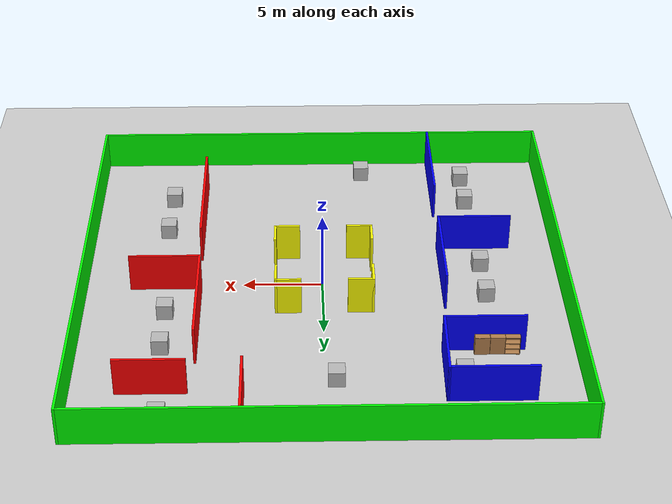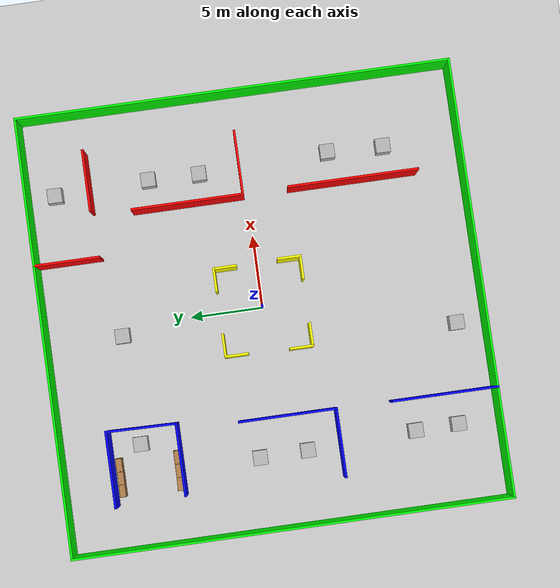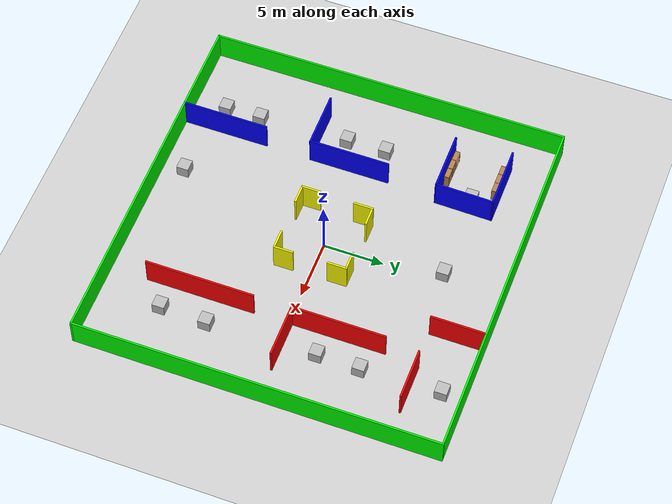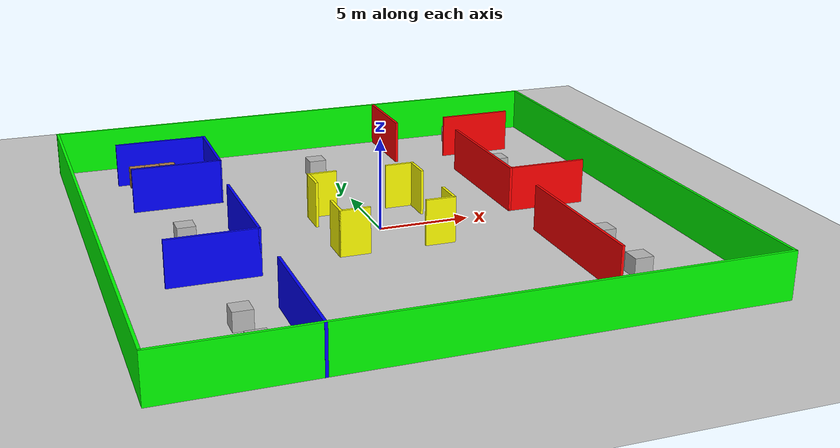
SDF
<sdf version="1.6">
 <world name="default">
  <light name="sun" type="directional">
   <pose>0 0 10 0 -0 0</pose>
   <diffuse>0.8 0.8 0.8 1</diffuse>
   <specular>0.1 0.1 0.1 1</specular>
   <attenuation>
    <range>1000</range>
    <constant>0.9</constant>
    <linear>0.01</linear>
    <quadratic>0.001</quadratic>
   </attenuation>
   <direction>-0.5 0.5 -1</direction>
  </light>
  <model name="ground_plane">
   <static>1</static>
   <link name="link">
    <collision name="collision">
     <geometry><plane><normal>0 0 1</normal><size>100 100</size></plane></geometry>
     <surface><friction><ode><mu>100</mu><mu2>50</mu2></ode></friction></surface>
    </collision>
    <visual name="visual">
     <cast_shadows>0</cast_shadows>
     <geometry><plane><normal>0 0 1</normal><size>100 100</size></plane></geometry>
     <material>
      <script><uri>file://media/materials/scripts/gazebo.material</uri><name>Gazebo/Grey</name></script>
     </material>
    </visual>
   </link>
  </model>
  <gravity>0 0 -9.8</gravity>
  <magnetic_field>6e-06 2.3e-05 -4.2e-05</magnetic_field>
  <atmosphere type="adiabatic"/>
  <physics name="default_physics" default="0" type="ode">
   <max_step_size>0.001</max_step_size>
   <real_time_factor>1</real_time_factor>
   <real_time_update_rate>1000</real_time_update_rate>
  </physics>
  <scene><ambient>0.4 0.4 0.4 1</ambient><background>0.7 0.7 0.7 1</background><shadows>1</shadows></scene>
  <spherical_coordinates>
   <surface_model>EARTH_WGS84</surface_model>
   <latitude_deg>0</latitude_deg>
   <longitude_deg>0</longitude_deg>
   <elevation>0</elevation>
   <heading_deg>0</heading_deg>
  </spherical_coordinates>
  <model name="open_classroom.world">
   <pose>-0.0798 0.017554 0 0 -0 0</pose>
   <link name="Wall_10">
    <collision name="Wall_10_Collision">
     <geometry><box><size>29.999 0.15 2.5</size></box></geometry>
     <pose>0 0 1.25 0 -0 0</pose>
    </collision>
    <visual name="Wall_10_Visual">
     <pose>0 0 1.25 0 -0 0</pose>
     <geometry><box><size>29.999 0.15 2.5</size></box></geometry>
     <material>
      <script><uri>file://media/materials/scripts/gazebo.material</uri><name>Gazebo/Grey</name></script>
      <ambient>0 1 0 1</ambient>
     </material>
    </visual>
    <pose>-15 0.00164 0 0 0 -1.5708</pose>
   </link>
   <link name="Wall_12">
    <collision name="Wall_12_Collision">
     <geometry><box><size>30 0.15 2.5</size></box></geometry>
     <pose>0 0 1.25 0 -0 0</pose>
    </collision>
    <visual name="Wall_12_Visual">
     <pose>0 0 1.25 0 -0 0</pose>
     <geometry><box><size>30 0.15 2.5</size></box></geometry>
     <material>
      <script><uri>file://media/materials/scripts/gazebo.material</uri><name>Gazebo/Grey</name></script>
      <ambient>0 1 0 1</ambient>
     </material>
    </visual>
    <pose>15 0.00114 0 0 0 -1.5708</pose>
   </link>
   <link name="Wall_14">
    <collision name="Wall_14_Collision">
     <geometry><box><size>30.15 0.15 2.5</size></box></geometry>
     <pose>0 0 1.25 0 -0 0</pose>
    </collision>
    <visual name="Wall_14_Visual">
     <pose>0 0 1.25 0 -0 0</pose>
     <geometry><box><size>30.15 0.15 2.5</size></box></geometry>
     <material>
      <script><uri>file://media/materials/scripts/gazebo.material</uri><name>Gazebo/Grey</name></script>
      <ambient>0 1 0 1</ambient>
     </material>
    </visual>
    <pose>0 -14.9234 0 0 0 -3.3e-05</pose>
   </link>
   <link name="Wall_16">
    <collision name="Wall_16_Collision">
     <geometry><box><size>30 0.15 2.5</size></box></geometry>
     <pose>0 0 1.25 0 -0 0</pose>
    </collision>
    <visual name="Wall_16_Visual">
     <pose>0 0 1.25 0 -0 0</pose>
     <geometry><box><size>30 0.15 2.5</size></box></geometry>
     <material>
      <script><uri>file://media/materials/scripts/gazebo.material</uri><name>Gazebo/Grey</name></script>
      <ambient>0 1 0 1</ambient>
     </material>
    </visual>
    <pose>-0.075 14.9261 0 0 -0 0</pose>
   </link>
   <link name="Wall_20">
    <collision name="Wall_20_Collision">
     <geometry><box><size>4.5 0.15 2.5</size></box></geometry>
     <pose>0 0 1.25 0 -0 0</pose>
    </collision>
    <visual name="Wall_20_Visual">
     <pose>0 0 1.25 0 -0 0</pose>
     <geometry><box><size>4.5 0.15 2.5</size></box></geometry>
     <material>
      <script><uri>file://media/materials/scripts/gazebo.material</uri><name>Gazebo/Grey</name></script>
      <ambient>1 0 0 1</ambient>
     </material>
    </visual>
    <pose>4.86357 12.6872 0 0 0 -1.5708</pose>
   </link>
   <link name="Wall_22">
    <collision name="Wall_22_Collision">
     <geometry><box><size>4.25 0.15 2.5</size></box></geometry>
     <pose>0 0 1.25 0 -0 0</pose>
    </collision>
    <visual name="Wall_22_Visual">
     <pose>0 0 1.25 0 -0 0</pose>
     <geometry><box><size>4.25 0.15 2.5</size></box></geometry>
     <material>
      <script><uri>file://media/materials/scripts/gazebo.material</uri><name>Gazebo/Grey</name></script>
      <ambient>1 0 0 1</ambient>
     </material>
    </visual>
    <pose>10.1684 10.6629 0 0 -0 0</pose>
   </link>
   <link name="Wall_25">
    <collision name="Wall_25_Collision">
     <geometry><box><size>7.75 0.15 2.5</size></box></geometry>
     <pose>0 0 1.25 0 -0 0</pose>
    </collision>
    <visual name="Wall_25_Visual">
     <pose>0 0 1.25 0 -0 0</pose>
     <geometry><box><size>7.75 0.15 2.5</size></box></geometry>
     <material>
      <script><uri>file://media/materials/scripts/gazebo.material</uri><name>Gazebo/Grey</name></script>
      <ambient>1 0 0 1</ambient>
     </material>
    </visual>
    <pose>7.76461 4.0572 0 0 0 -1.5708</pose>
   </link>
   <link name="Wall_26">
    <collision name="Wall_26_Collision">
     <geometry><box><size>4.5 0.15 2.5</size></box></geometry>
     <pose>0 0 1.25 0 -0 0</pose>
    </collision>
    <visual name="Wall_26_Visual">
     <pose>0 0 1.25 0 -0 0</pose>
     <geometry><box><size>4.5 0.15 2.5</size></box></geometry>
     <material>
      <script><uri>file://media/materials/scripts/gazebo.material</uri><name>Gazebo/Grey</name></script>
      <ambient>1 0 0 1</ambient>
     </material>
    </visual>
    <pose>9.93961 0.257202 0 0 -0 0</pose>
   </link>
   <link name="Wall_28">
    <collision name="Wall_28_Collision">
     <geometry><box><size>9 0.15 2.5</size></box></geometry>
     <pose>0 0 1.25 0 -0 0</pose>
    </collision>
    <visual name="Wall_28_Visual">
     <pose>0 0 1.25 0 -0 0</pose>
     <geometry><box><size>9 0.15 2.5</size></box></geometry>
     <material>
      <script><uri>file://media/materials/scripts/gazebo.material</uri><name>Gazebo/Grey</name></script>
      <ambient>1 0 0 1</ambient>
     </material>
    </visual>
    <pose>7.83537 -7.32287 0 0 0 -1.5708</pose>
   </link>
   <link name="Wall_30">
    <collision name="Wall_30_Collision">
     <geometry><box><size>5.25 0.15 2.5</size></box></geometry>
     <pose>0 0 1.25 0 -0 0</pose>
    </collision>
    <visual name="Wall_30_Visual">
     <pose>0 0 1.25 0 -0 0</pose>
     <geometry><box><size>5.25 0.15 2.5</size></box></geometry>
     <material>
      <script><uri>file://media/materials/scripts/gazebo.material</uri><name>Gazebo/Grey</name></script>
      <ambient>0 0 1 1</ambient>
     </material>
    </visual>
    <pose>-9.45 11.5921 0 0 -0 0</pose>
   </link>
   <link name="Wall_32">
    <collision name="Wall_32_Collision">
     <geometry><box><size>7.25 0.15 2.5</size></box></geometry>
     <pose>0 0 1.25 0 -0 0</pose>
    </collision>
    <visual name="Wall_32_Visual">
     <pose>0 0 1.25 0 -0 0</pose>
     <geometry><box><size>7.25 0.15 2.5</size></box></geometry>
     <material>
      <script><uri>file://media/materials/scripts/gazebo.material</uri><name>Gazebo/Grey</name></script>
      <ambient>0 0 1 1</ambient>
     </material>
    </visual>
    <pose>-7.53303 -11.3761 0 0 -0 1.5708</pose>
   </link>
   <link name="Wall_34">
    <collision name="Wall_34_Collision">
     <geometry><box><size>4.75 0.15 2.5</size></box></geometry>
     <pose>0 0 1.25 0 -0 0</pose>
    </collision>
    <visual name="Wall_34_Visual">
     <pose>0 0 1.25 0 -0 0</pose>
     <geometry><box><size>4.75 0.15 2.5</size></box></geometry>
     <material>
      <script><uri>file://media/materials/scripts/gazebo.material</uri><name>Gazebo/Grey</name></script>
      <ambient>0 0 1 1</ambient>
     </material>
    </visual>
    <pose>-9.78609 -3.97418 0 0 -0 0</pose>
   </link>
   <link name="Wall_36">
    <collision name="Wall_36_Collision">
     <geometry><box><size>6.75 0.15 2.5</size></box></geometry>
     <pose>0 0 1.25 0 -0 0</pose>
    </collision>
    <visual name="Wall_36_Visual">
     <pose>0 0 1.25 0 -0 0</pose>
     <geometry><box><size>6.75 0.15 2.5</size></box></geometry>
     <material>
      <script><uri>file://media/materials/scripts/gazebo.material</uri><name>Gazebo/Grey</name></script>
      <ambient>0 0 1 1</ambient>
     </material>
    </visual>
    <pose>-7.48609 -0.67418 0 0 -0 1.5708</pose>
   </link>
   <link name="Wall_38">
    <collision name="Wall_38_Collision">
     <geometry><box><size>5 0.15 2.5</size></box></geometry>
     <pose>0 0 1.25 0 -0 0</pose>
    </collision>
    <visual name="Wall_38_Visual">
     <pose>0 0 1.25 0 -0 0</pose>
     <geometry><box><size>5 0.15 2.5</size></box></geometry>
     <material>
      <script><uri>file://media/materials/scripts/gazebo.material</uri><name>Gazebo/Grey</name></script>
      <ambient>0 0 1 1</ambient>
     </material>
    </visual>
    <pose>-9.41498 6.85473 0 0 -0 0</pose>
   </link>
   <link name="Wall_52">
    <collision name="Wall_52_Collision">
     <geometry><box><size>1.65 0.15 2.5</size></box></geometry>
     <pose>0 0 1.25 0 -0 0</pose>
    </collision>
    <visual name="Wall_52_Visual">
     <pose>0 0 1.25 0 -0 0</pose>
     <geometry><box><size>1.65 0.15 2.5</size></box></geometry>
     <material>
      <script><uri>file://media/materials/scripts/gazebo.material</uri><name>Gazebo/Grey</name></script>
      <ambient>1 1 0 1</ambient>
     </material>
    </visual>
    <pose>-3 2.17614 0 0 0 -1.5708</pose>
   </link>
   <link name="Wall_56">
    <collision name="Wall_56_Collision">
     <geometry><box><size>1.65 0.15 2.5</size></box></geometry>
     <pose>0 0 1.25 0 -0 0</pose>
    </collision>
    <visual name="Wall_56_Visual">
     <pose>0 0 1.25 0 -0 0</pose>
     <geometry><box><size>1.65 0.15 2.5</size></box></geometry>
     <material>
      <script><uri>file://media/materials/scripts/gazebo.material</uri><name>Gazebo/Grey</name></script>
      <ambient>1 1 0 1</ambient>
     </material>
    </visual>
    <pose>-3.07339 -2.25176 0 0 -0 1.5708</pose>
   </link>
   <link name="Wall_58">
    <collision name="Wall_58_Collision">
     <geometry><box><size>1.65 0.15 2.5</size></box></geometry>
     <pose>0 0 1.25 0 -0 0</pose>
    </collision>
    <visual name="Wall_58_Visual">
     <pose>0 0 1.25 0 -0 0</pose>
     <geometry><box><size>1.65 0.15 2.5</size></box></geometry>
     <material>
      <script><uri>file://media/materials/scripts/gazebo.material</uri><name>Gazebo/Grey</name></script>
      <ambient>1 1 0 1</ambient>
     </material>
    </visual>
    <pose>-2.25 2.92614 0 0 -0 0</pose>
   </link>
   <link name="Wall_60">
    <collision name="Wall_60_Collision">
     <geometry><box><size>1.65 0.15 2.5</size></box></geometry>
     <pose>0 0 1.25 0 -0 0</pose>
    </collision>
    <visual name="Wall_60_Visual">
     <pose>0 0 1.25 0 -0 0</pose>
     <geometry><box><size>1.65 0.15 2.5</size></box></geometry>
     <material>
      <script><uri>file://media/materials/scripts/gazebo.material</uri><name>Gazebo/Grey</name></script>
      <ambient>1 1 0 1</ambient>
     </material>
    </visual>
    <pose>-2.32339 -3.00176 0 0 -0 0</pose>
   </link>
   <link name="Wall_64">
    <collision name="Wall_64_Collision">
     <geometry><box><size>1.65 0.15 2.5</size></box></geometry>
     <pose>0 0 1.25 0 -0 0</pose>
    </collision>
    <visual name="Wall_64_Visual">
     <pose>0 0 1.25 0 -0 0</pose>
     <geometry><box><size>1.65 0.15 2.5</size></box></geometry>
     <material>
      <script><uri>file://media/materials/scripts/gazebo.material</uri><name>Gazebo/Grey</name></script>
      <ambient>1 1 0 1</ambient>
     </material>
    </visual>
    <pose>2.25 2.92614 0 0 -0 3.14159</pose>
   </link>
   <link name="Wall_66">
    <collision name="Wall_66_Collision">
     <geometry><box><size>1.65 0.15 2.5</size></box></geometry>
     <pose>0 0 1.25 0 -0 0</pose>
    </collision>
    <visual name="Wall_66_Visual">
     <pose>0 0 1.25 0 -0 0</pose>
     <geometry><box><size>1.65 0.15 2.5</size></box></geometry>
     <material>
      <script><uri>file://media/materials/scripts/gazebo.material</uri><name>Gazebo/Grey</name></script>
      <ambient>1 1 0 1</ambient>
     </material>
    </visual>
    <pose>3 2.17614 0 0 0 -1.5708</pose>
   </link>
   <link name="Wall_69">
    <collision name="Wall_69_Collision">
     <geometry><box><size>1.65 0.15 2.5</size></box></geometry>
     <pose>0 0 1.25 0 -0 0</pose>
    </collision>
    <visual name="Wall_69_Visual">
     <pose>0 0 1.25 0 -0 0</pose>
     <geometry><box><size>1.65 0.15 2.5</size></box></geometry>
     <material>
      <script><uri>file://media/materials/scripts/gazebo.material</uri><name>Gazebo/Grey</name></script>
      <ambient>1 1 0 1</ambient>
     </material>
    </visual>
    <pose>2.31361 -3.00335 0 0 -0 3.14159</pose>
   </link>
   <link name="Wall_71">
    <collision name="Wall_71_Collision">
     <geometry><box><size>1.65 0.15 2.5</size></box></geometry>
     <pose>0 0 1.25 0 -0 0</pose>
    </collision>
    <visual name="Wall_71_Visual">
     <pose>0 0 1.25 0 -0 0</pose>
     <geometry><box><size>1.65 0.15 2.5</size></box></geometry>
     <material>
      <script><uri>file://media/materials/scripts/gazebo.material</uri><name>Gazebo/Grey</name></script>
      <ambient>1 1 0 1</ambient>
     </material>
    </visual>
    <pose>3.06361 -2.25335 0 0 -0 1.5708</pose>
   </link>
   <link name="Wall_75">
    <collision name="Wall_75_Collision">
     <geometry><box><size>4.88827 0.15 2.5</size></box></geometry>
     <pose>0 0 1.25 0 -0 0</pose>
    </collision>
    <visual name="Wall_75_Visual">
     <pose>0 0 1.25 0 -0 0</pose>
     <geometry><box><size>4.88827 0.15 2.5</size></box></geometry>
     <material>
      <script><uri>file://media/materials/scripts/gazebo.material</uri><name>Gazebo/Grey</name></script>
      <ambient>0 0 1 1</ambient>
     </material>
    </visual>
    <pose>-6.94499 9.22343 0 0 -0 1.55181</pose>
   </link>
   <static>1</static>
  </model>
  <model name="bookshelf">
   <static>1</static>
   <link name="link">
    <inertial><mass>1</mass></inertial>
    <collision name="back">
     <pose>0 0.005 0.6 0 -0 0</pose>
     <geometry><box><size>0.9 0.01 1.2</size></box></geometry>
    </collision>
    <visual name="visual1">
     <pose>0 0.005 0.6 0 -0 0</pose>
     <geometry><box><size>0.9 0.01 1.2</size></box></geometry>
     <material>
      <script><uri>file://media/materials/scripts/gazebo.material</uri><name>Gazebo/Wood</name></script>
     </material>
    </visual>
    <collision name="left_side">
     <pose>0.45 -0.195 0.6 0 -0 0</pose>
     <geometry><box><size>0.02 0.4 1.2</size></box></geometry>
    </collision>
    <visual name="visual2">
     <pose>0.45 -0.195 0.6 0 -0 0</pose>
     <geometry><box><size>0.02 0.4 1.2</size></box></geometry>
     <material>
      <script><uri>file://media/materials/scripts/gazebo.material</uri><name>Gazebo/Wood</name></script>
     </material>
    </visual>
    <collision name="right_side">
     <pose>-0.45 -0.195 0.6 0 -0 0</pose>
     <geometry><box><size>0.02 0.4 1.2</size></box></geometry>
    </collision>
    <visual name="visual3">
     <pose>-0.45 -0.195 0.6 0 -0 0</pose>
     <geometry><box><size>0.02 0.4 1.2</size></box></geometry>
     <material>
      <script><uri>file://media/materials/scripts/gazebo.material</uri><name>Gazebo/Wood</name></script>
     </material>
    </visual>
    <collision name="bottom">
     <pose>0 -0.195 0.03 0 -0 0</pose>
     <geometry><box><size>0.88 0.4 0.06</size></box></geometry>
    </collision>
    <visual name="visual4">
     <pose>0 -0.195 0.03 0 -0 0</pose>
     <geometry><box><size>0.88 0.4 0.06</size></box></geometry>
     <material>
      <script><uri>file://media/materials/scripts/gazebo.material</uri><name>Gazebo/Wood</name></script>
     </material>
    </visual>
    <collision name="top">
     <pose>0 -0.195 1.19 0 -0 0</pose>
     <geometry><box><size>0.88 0.4 0.02</size></box></geometry>
    </collision>
    <visual name="visual5">
     <pose>0 -0.195 1.19 0 -0 0</pose>
     <geometry><box><size>0.88 0.4 0.02</size></box></geometry>
     <material>
      <script><uri>file://media/materials/scripts/gazebo.material</uri><name>Gazebo/Wood</name></script>
     </material>
    </visual>
    <collision name="low_shelf">
     <pose>0 -0.195 0.43 0 -0 0</pose>
     <geometry><box><size>0.88 0.4 0.02</size></box></geometry>
    </collision>
    <visual name="visual6">
     <pose>0 -0.195 0.43 0 -0 0</pose>
     <geometry><box><size>0.88 0.4 0.02</size></box></geometry>
     <material>
      <script><uri>file://media/materials/scripts/gazebo.material</uri><name>Gazebo/Wood</name></script>
     </material>
    </visual>
    <collision name="high_shelf">
     <pose>0 -0.195 0.8 0 -0 0</pose>
     <geometry><box><size>0.88 0.4 0.02</size></box></geometry>
    </collision>
    <visual name="visual7">
     <pose>0 -0.195 0.8 0 -0 0</pose>
     <geometry><box><size>0.88 0.4 0.02</size></box></geometry>
     <material>
      <script><uri>file://media/materials/scripts/gazebo.material</uri><name>Gazebo/Wood</name></script>
     </material>
    </visual>
   </link>
   <pose>-11.0604 11.3452 0 0 -0 0</pose>
  </model>
  <model name="bookshelf_clone">
   <static>1</static>
   <link name="link">
    <inertial><mass>1</mass></inertial>
    <collision name="back">
     <pose>0 0.005 0.6 0 -0 0</pose>
     <geometry><box><size>0.9 0.01 1.2</size></box></geometry>
    </collision>
    <visual name="visual1">
     <pose>0 0.005 0.6 0 -0 0</pose>
     <geometry><box><size>0.9 0.01 1.2</size></box></geometry>
     <material>
      <script><uri>file://media/materials/scripts/gazebo.material</uri><name>Gazebo/Wood</name></script>
     </material>
    </visual>
    <collision name="left_side">
     <pose>0.45 -0.195 0.6 0 -0 0</pose>
     <geometry><box><size>0.02 0.4 1.2</size></box></geometry>
    </collision>
    <visual name="visual2">
     <pose>0.45 -0.195 0.6 0 -0 0</pose>
     <geometry><box><size>0.02 0.4 1.2</size></box></geometry>
     <material>
      <script><uri>file://media/materials/scripts/gazebo.material</uri><name>Gazebo/Wood</name></script>
     </material>
    </visual>
    <collision name="right_side">
     <pose>-0.45 -0.195 0.6 0 -0 0</pose>
     <geometry><box><size>0.02 0.4 1.2</size></box></geometry>
    </collision>
    <visual name="visual3">
     <pose>-0.45 -0.195 0.6 0 -0 0</pose>
     <geometry><box><size>0.02 0.4 1.2</size></box></geometry>
     <material>
      <script><uri>file://media/materials/scripts/gazebo.material</uri><name>Gazebo/Wood</name></script>
     </material>
    </visual>
    <collision name="bottom">
     <pose>0 -0.195 0.03 0 -0 0</pose>
     <geometry><box><size>0.88 0.4 0.06</size></box></geometry>
    </collision>
    <visual name="visual4">
     <pose>0 -0.195 0.03 0 -0 0</pose>
     <geometry><box><size>0.88 0.4 0.06</size></box></geometry>
     <material>
      <script><uri>file://media/materials/scripts/gazebo.material</uri><name>Gazebo/Wood</name></script>
     </material>
    </visual>
    <collision name="top">
     <pose>0 -0.195 1.19 0 -0 0</pose>
     <geometry><box><size>0.88 0.4 0.02</size></box></geometry>
    </collision>
    <visual name="visual5">
     <pose>0 -0.195 1.19 0 -0 0</pose>
     <geometry><box><size>0.88 0.4 0.02</size></box></geometry>
     <material>
      <script><uri>file://media/materials/scripts/gazebo.material</uri><name>Gazebo/Wood</name></script>
     </material>
    </visual>
    <collision name="low_shelf">
     <pose>0 -0.195 0.43 0 -0 0</pose>
     <geometry><box><size>0.88 0.4 0.02</size></box></geometry>
    </collision>
    <visual name="visual6">
     <pose>0 -0.195 0.43 0 -0 0</pose>
     <geometry><box><size>0.88 0.4 0.02</size></box></geometry>
     <material>
      <script><uri>file://media/materials/scripts/gazebo.material</uri><name>Gazebo/Wood</name></script>
     </material>
    </visual>
    <collision name="high_shelf">
     <pose>0 -0.195 0.8 0 -0 0</pose>
     <geometry><box><size>0.88 0.4 0.02</size></box></geometry>
    </collision>
    <visual name="visual7">
     <pose>0 -0.195 0.8 0 -0 0</pose>
     <geometry><box><size>0.88 0.4 0.02</size></box></geometry>
     <material>
      <script><uri>file://media/materials/scripts/gazebo.material</uri><name>Gazebo/Wood</name></script>
     </material>
    </visual>
   </link>
   <pose>-10.2143 11.3375 0 0 -0 0</pose>
  </model>
  <model name="bookshelf_clone_0">
   <static>1</static>
   <link name="link">
    <inertial><mass>1</mass></inertial>
    <collision name="back">
     <pose>0 0.005 0.6 0 -0 0</pose>
     <geometry><box><size>0.9 0.01 1.2</size></box></geometry>
    </collision>
    <visual name="visual1">
     <pose>0 0.005 0.6 0 -0 0</pose>
     <geometry><box><size>0.9 0.01 1.2</size></box></geometry>
     <material>
      <script><uri>file://media/materials/scripts/gazebo.material</uri><name>Gazebo/Wood</name></script>
     </material>
    </visual>
    <collision name="left_side">
     <pose>0.45 -0.195 0.6 0 -0 0</pose>
     <geometry><box><size>0.02 0.4 1.2</size></box></geometry>
    </collision>
    <visual name="visual2">
     <pose>0.45 -0.195 0.6 0 -0 0</pose>
     <geometry><box><size>0.02 0.4 1.2</size></box></geometry>
     <material>
      <script><uri>file://media/materials/scripts/gazebo.material</uri><name>Gazebo/Wood</name></script>
     </material>
    </visual>
    <collision name="right_side">
     <pose>-0.45 -0.195 0.6 0 -0 0</pose>
     <geometry><box><size>0.02 0.4 1.2</size></box></geometry>
    </collision>
    <visual name="visual3">
     <pose>-0.45 -0.195 0.6 0 -0 0</pose>
     <geometry><box><size>0.02 0.4 1.2</size></box></geometry>
     <material>
      <script><uri>file://media/materials/scripts/gazebo.material</uri><name>Gazebo/Wood</name></script>
     </material>
    </visual>
    <collision name="bottom">
     <pose>0 -0.195 0.03 0 -0 0</pose>
     <geometry><box><size>0.88 0.4 0.06</size></box></geometry>
    </collision>
    <visual name="visual4">
     <pose>0 -0.195 0.03 0 -0 0</pose>
     <geometry><box><size>0.88 0.4 0.06</size></box></geometry>
     <material>
      <script><uri>file://media/materials/scripts/gazebo.material</uri><name>Gazebo/Wood</name></script>
     </material>
    </visual>
    <collision name="top">
     <pose>0 -0.195 1.19 0 -0 0</pose>
     <geometry><box><size>0.88 0.4 0.02</size></box></geometry>
    </collision>
    <visual name="visual5">
     <pose>0 -0.195 1.19 0 -0 0</pose>
     <geometry><box><size>0.88 0.4 0.02</size></box></geometry>
     <material>
      <script><uri>file://media/materials/scripts/gazebo.material</uri><name>Gazebo/Wood</name></script>
     </material>
    </visual>
    <collision name="low_shelf">
     <pose>0 -0.195 0.43 0 -0 0</pose>
     <geometry><box><size>0.88 0.4 0.02</size></box></geometry>
    </collision>
    <visual name="visual6">
     <pose>0 -0.195 0.43 0 -0 0</pose>
     <geometry><box><size>0.88 0.4 0.02</size></box></geometry>
     <material>
      <script><uri>file://media/materials/scripts/gazebo.material</uri><name>Gazebo/Wood</name></script>
     </material>
    </visual>
    <collision name="high_shelf">
     <pose>0 -0.195 0.8 0 -0 0</pose>
     <geometry><box><size>0.88 0.4 0.02</size></box></geometry>
    </collision>
    <visual name="visual7">
     <pose>0 -0.195 0.8 0 -0 0</pose>
     <geometry><box><size>0.88 0.4 0.02</size></box></geometry>
     <material>
      <script><uri>file://media/materials/scripts/gazebo.material</uri><name>Gazebo/Wood</name></script>
     </material>
    </visual>
   </link>
   <pose>-9.34437 11.3504 0 0 -0 0</pose>
  </model>
  <model name="bookshelf_clone_1">
   <static>1</static>
   <link name="link">
    <inertial><mass>1</mass></inertial>
    <collision name="back">
     <pose>0 0.005 0.6 0 -0 0</pose>
     <geometry><box><size>0.9 0.01 1.2</size></box></geometry>
    </collision>
    <visual name="visual1">
     <pose>0 0.005 0.6 0 -0 0</pose>
     <geometry><box><size>0.9 0.01 1.2</size></box></geometry>
     <material>
      <script><uri>file://media/materials/scripts/gazebo.material</uri><name>Gazebo/Wood</name></script>
     </material>
    </visual>
    <collision name="left_side">
     <pose>0.45 -0.195 0.6 0 -0 0</pose>
     <geometry><box><size>0.02 0.4 1.2</size></box></geometry>
    </collision>
    <visual name="visual2">
     <pose>0.45 -0.195 0.6 0 -0 0</pose>
     <geometry><box><size>0.02 0.4 1.2</size></box></geometry>
     <material>
      <script><uri>file://media/materials/scripts/gazebo.material</uri><name>Gazebo/Wood</name></script>
     </material>
    </visual>
    <collision name="right_side">
     <pose>-0.45 -0.195 0.6 0 -0 0</pose>
     <geometry><box><size>0.02 0.4 1.2</size></box></geometry>
    </collision>
    <visual name="visual3">
     <pose>-0.45 -0.195 0.6 0 -0 0</pose>
     <geometry><box><size>0.02 0.4 1.2</size></box></geometry>
     <material>
      <script><uri>file://media/materials/scripts/gazebo.material</uri><name>Gazebo/Wood</name></script>
     </material>
    </visual>
    <collision name="bottom">
     <pose>0 -0.195 0.03 0 -0 0</pose>
     <geometry><box><size>0.88 0.4 0.06</size></box></geometry>
    </collision>
    <visual name="visual4">
     <pose>0 -0.195 0.03 0 -0 0</pose>
     <geometry><box><size>0.88 0.4 0.06</size></box></geometry>
     <material>
      <script><uri>file://media/materials/scripts/gazebo.material</uri><name>Gazebo/Wood</name></script>
     </material>
    </visual>
    <collision name="top">
     <pose>0 -0.195 1.19 0 -0 0</pose>
     <geometry><box><size>0.88 0.4 0.02</size></box></geometry>
    </collision>
    <visual name="visual5">
     <pose>0 -0.195 1.19 0 -0 0</pose>
     <geometry><box><size>0.88 0.4 0.02</size></box></geometry>
     <material>
      <script><uri>file://media/materials/scripts/gazebo.material</uri><name>Gazebo/Wood</name></script>
     </material>
    </visual>
    <collision name="low_shelf">
     <pose>0 -0.195 0.43 0 -0 0</pose>
     <geometry><box><size>0.88 0.4 0.02</size></box></geometry>
    </collision>
    <visual name="visual6">
     <pose>0 -0.195 0.43 0 -0 0</pose>
     <geometry><box><size>0.88 0.4 0.02</size></box></geometry>
     <material>
      <script><uri>file://media/materials/scripts/gazebo.material</uri><name>Gazebo/Wood</name></script>
     </material>
    </visual>
    <collision name="high_shelf">
     <pose>0 -0.195 0.8 0 -0 0</pose>
     <geometry><box><size>0.88 0.4 0.02</size></box></geometry>
    </collision>
    <visual name="visual7">
     <pose>0 -0.195 0.8 0 -0 0</pose>
     <geometry><box><size>0.88 0.4 0.02</size></box></geometry>
     <material>
      <script><uri>file://media/materials/scripts/gazebo.material</uri><name>Gazebo/Wood</name></script>
     </material>
    </visual>
   </link>
   <pose>-11.1689 7.00894 0 0 -0 3.10276</pose>
  </model>
  <model name="bookshelf_clone_2">
   <static>1</static>
   <link name="link">
    <inertial><mass>1</mass></inertial>
    <collision name="back">
     <pose>0 0.005 0.6 0 -0 0</pose>
     <geometry><box><size>0.9 0.01 1.2</size></box></geometry>
    </collision>
    <visual name="visual1">
     <pose>0 0.005 0.6 0 -0 0</pose>
     <geometry><box><size>0.9 0.01 1.2</size></box></geometry>
     <material>
      <script><uri>file://media/materials/scripts/gazebo.material</uri><name>Gazebo/Wood</name></script>
     </material>
    </visual>
    <collision name="left_side">
     <pose>0.45 -0.195 0.6 0 -0 0</pose>
     <geometry><box><size>0.02 0.4 1.2</size></box></geometry>
    </collision>
    <visual name="visual2">
     <pose>0.45 -0.195 0.6 0 -0 0</pose>
     <geometry><box><size>0.02 0.4 1.2</size></box></geometry>
     <material>
      <script><uri>file://media/materials/scripts/gazebo.material</uri><name>Gazebo/Wood</name></script>
     </material>
    </visual>
    <collision name="right_side">
     <pose>-0.45 -0.195 0.6 0 -0 0</pose>
     <geometry><box><size>0.02 0.4 1.2</size></box></geometry>
    </collision>
    <visual name="visual3">
     <pose>-0.45 -0.195 0.6 0 -0 0</pose>
     <geometry><box><size>0.02 0.4 1.2</size></box></geometry>
     <material>
      <script><uri>file://media/materials/scripts/gazebo.material</uri><name>Gazebo/Wood</name></script>
     </material>
    </visual>
    <collision name="bottom">
     <pose>0 -0.195 0.03 0 -0 0</pose>
     <geometry><box><size>0.88 0.4 0.06</size></box></geometry>
    </collision>
    <visual name="visual4">
     <pose>0 -0.195 0.03 0 -0 0</pose>
     <geometry><box><size>0.88 0.4 0.06</size></box></geometry>
     <material>
      <script><uri>file://media/materials/scripts/gazebo.material</uri><name>Gazebo/Wood</name></script>
     </material>
    </visual>
    <collision name="top">
     <pose>0 -0.195 1.19 0 -0 0</pose>
     <geometry><box><size>0.88 0.4 0.02</size></box></geometry>
    </collision>
    <visual name="visual5">
     <pose>0 -0.195 1.19 0 -0 0</pose>
     <geometry><box><size>0.88 0.4 0.02</size></box></geometry>
     <material>
      <script><uri>file://media/materials/scripts/gazebo.material</uri><name>Gazebo/Wood</name></script>
     </material>
    </visual>
    <collision name="low_shelf">
     <pose>0 -0.195 0.43 0 -0 0</pose>
     <geometry><box><size>0.88 0.4 0.02</size></box></geometry>
    </collision>
    <visual name="visual6">
     <pose>0 -0.195 0.43 0 -0 0</pose>
     <geometry><box><size>0.88 0.4 0.02</size></box></geometry>
     <material>
      <script><uri>file://media/materials/scripts/gazebo.material</uri><name>Gazebo/Wood</name></script>
     </material>
    </visual>
    <collision name="high_shelf">
     <pose>0 -0.195 0.8 0 -0 0</pose>
     <geometry><box><size>0.88 0.4 0.02</size></box></geometry>
    </collision>
    <visual name="visual7">
     <pose>0 -0.195 0.8 0 -0 0</pose>
     <geometry><box><size>0.88 0.4 0.02</size></box></geometry>
     <material>
      <script><uri>file://media/materials/scripts/gazebo.material</uri><name>Gazebo/Wood</name></script>
     </material>
    </visual>
   </link>
   <pose>-10.2653 7.37314 0 0 -0 0</pose>
  </model>
  <model name="bookshelf_clone_3">
   <static>1</static>
   <link name="link">
    <inertial><mass>1</mass></inertial>
    <collision name="back">
     <pose>0 0.005 0.6 0 -0 0</pose>
     <geometry><box><size>0.9 0.01 1.2</size></box></geometry>
    </collision>
    <visual name="visual1">
     <pose>0 0.005 0.6 0 -0 0</pose>
     <geometry><box><size>0.9 0.01 1.2</size></box></geometry>
     <material>
      <script><uri>file://media/materials/scripts/gazebo.material</uri><name>Gazebo/Wood</name></script>
     </material>
    </visual>
    <collision name="left_side">
     <pose>0.45 -0.195 0.6 0 -0 0</pose>
     <geometry><box><size>0.02 0.4 1.2</size></box></geometry>
    </collision>
    <visual name="visual2">
     <pose>0.45 -0.195 0.6 0 -0 0</pose>
     <geometry><box><size>0.02 0.4 1.2</size></box></geometry>
     <material>
      <script><uri>file://media/materials/scripts/gazebo.material</uri><name>Gazebo/Wood</name></script>
     </material>
    </visual>
    <collision name="right_side">
     <pose>-0.45 -0.195 0.6 0 -0 0</pose>
     <geometry><box><size>0.02 0.4 1.2</size></box></geometry>
    </collision>
    <visual name="visual3">
     <pose>-0.45 -0.195 0.6 0 -0 0</pose>
     <geometry><box><size>0.02 0.4 1.2</size></box></geometry>
     <material>
      <script><uri>file://media/materials/scripts/gazebo.material</uri><name>Gazebo/Wood</name></script>
     </material>
    </visual>
    <collision name="bottom">
     <pose>0 -0.195 0.03 0 -0 0</pose>
     <geometry><box><size>0.88 0.4 0.06</size></box></geometry>
    </collision>
    <visual name="visual4">
     <pose>0 -0.195 0.03 0 -0 0</pose>
     <geometry><box><size>0.88 0.4 0.06</size></box></geometry>
     <material>
      <script><uri>file://media/materials/scripts/gazebo.material</uri><name>Gazebo/Wood</name></script>
     </material>
    </visual>
    <collision name="top">
     <pose>0 -0.195 1.19 0 -0 0</pose>
     <geometry><box><size>0.88 0.4 0.02</size></box></geometry>
    </collision>
    <visual name="visual5">
     <pose>0 -0.195 1.19 0 -0 0</pose>
     <geometry><box><size>0.88 0.4 0.02</size></box></geometry>
     <material>
      <script><uri>file://media/materials/scripts/gazebo.material</uri><name>Gazebo/Wood</name></script>
     </material>
    </visual>
    <collision name="low_shelf">
     <pose>0 -0.195 0.43 0 -0 0</pose>
     <geometry><box><size>0.88 0.4 0.02</size></box></geometry>
    </collision>
    <visual name="visual6">
     <pose>0 -0.195 0.43 0 -0 0</pose>
     <geometry><box><size>0.88 0.4 0.02</size></box></geometry>
     <material>
      <script><uri>file://media/materials/scripts/gazebo.material</uri><name>Gazebo/Wood</name></script>
     </material>
    </visual>
    <collision name="high_shelf">
     <pose>0 -0.195 0.8 0 -0 0</pose>
     <geometry><box><size>0.88 0.4 0.02</size></box></geometry>
    </collision>
    <visual name="visual7">
     <pose>0 -0.195 0.8 0 -0 0</pose>
     <geometry><box><size>0.88 0.4 0.02</size></box></geometry>
     <material>
      <script><uri>file://media/materials/scripts/gazebo.material</uri><name>Gazebo/Wood</name></script>
     </material>
    </visual>
   </link>
   <pose>-9.34973 7.37229 0 0 -0 0</pose>
  </model>
  <model name="box">
   <pose>-9.76093 -12.1542 0 0 -0 0</pose>
   <link name="link">
    <pose>0 0 0.5 0 -0 0</pose>
    <collision name="collision"><geometry><box><size>1 1 1</size></box></geometry></collision>
    <visual name="visual"><geometry><box><size>1 1 1</size></box></geometry></visual>
    <inertial>
     <inertia><ixx>1</ixx><ixy>0</ixy><ixz>0</ixz><iyy>1</iyy><iyz>0</iyz><izz>1</izz></inertia>
     <mass>1</mass>
    </inertial>
   </link>
  </model>
  <model name="box_clone">
   <pose>-9.812 -9.19283 0 0 -0 0</pose>
   <link name="link">
    <pose>0 0 0.5 0 -0 0</pose>
    <collision name="collision"><geometry><box><size>1 1 1</size></box></geometry></collision>
    <visual name="visual"><geometry><box><size>1 1 1</size></box></geometry></visual>
    <inertial>
     <inertia><ixx>1</ixx><ixy>0</ixy><ixz>0</ixz><iyy>1</iyy><iyz>0</iyz><izz>1</izz></inertia>
     <mass>1</mass>
    </inertial>
   </link>
  </model>
  <model name="box_clone_0">
   <pose>-10.1228 -1.7128 0 0 -0 0</pose>
   <link name="link">
    <pose>0 0 0.5 0 -0 0</pose>
    <collision name="collision"><geometry><box><size>1 1 1</size></box></geometry></collision>
    <visual name="visual"><geometry><box><size>1 1 1</size></box></geometry></visual>
    <inertial>
     <inertia><ixx>1</ixx><ixy>0</ixy><ixz>0</ixz><iyy>1</iyy><iyz>0</iyz><izz>1</izz></inertia>
     <mass>1</mass>
    </inertial>
   </link>
  </model>
  <model name="box_clone_1">
   <pose>-10.1765 1.5778 0 0 -0 0</pose>
   <link name="link">
    <pose>0 0 0.5 0 -0 0</pose>
    <collision name="collision"><geometry><box><size>1 1 1</size></box></geometry></collision>
    <visual name="visual"><geometry><box><size>1 1 1</size></box></geometry></visual>
    <inertial>
     <inertia><ixx>1</ixx><ixy>0</ixy><ixz>0</ixz><iyy>1</iyy><iyz>0</iyz><izz>1</izz></inertia>
     <mass>1</mass>
    </inertial>
   </link>
  </model>
  <model name="box_clone_2">
   <pose>-8.12895 9.52449 0 0 -0 0</pose>
   <link name="link">
    <pose>0 0 0.5 0 -0 0</pose>
    <collision name="collision"><geometry><box><size>1 1 1</size></box></geometry></collision>
    <visual name="visual"><geometry><box><size>1 1 1</size></box></geometry></visual>
    <inertial>
     <inertia><ixx>1</ixx><ixy>0</ixy><ixz>0</ixz><iyy>1</iyy><iyz>0</iyz><izz>1</izz></inertia>
     <mass>1</mass>
    </inertial>
   </link>
  </model>
  <model name="box_clone_3">
   <pose>-0.650723 9.78419 0 0 -0 0</pose>
   <link name="link">
    <pose>0 0 0.5 0 -0 0</pose>
    <collision name="collision"><geometry><box><size>1 1 1</size></box></geometry></collision>
    <visual name="visual"><geometry><box><size>1 1 1</size></box></geometry></visual>
    <inertial>
     <inertia><ixx>1</ixx><ixy>0</ixy><ixz>0</ixz><iyy>1</iyy><iyz>0</iyz><izz>1</izz></inertia>
     <mass>1</mass>
    </inertial>
   </link>
  </model>
  <model name="box_clone_4">
   <pose>-2.88634 -13.0388 0 0 -0 0</pose>
   <link name="link">
    <pose>0 0 0.5 0 -0 0</pose>
    <collision name="collision"><geometry><box><size>1 1 1</size></box></geometry></collision>
    <visual name="visual"><geometry><box><size>1 1 1</size></box></geometry></visual>
    <inertial>
     <inertia><ixx>1</ixx><ixy>0</ixy><ixz>0</ixz><iyy>1</iyy><iyz>0</iyz><izz>1</izz></inertia>
     <mass>1</mass>
    </inertial>
   </link>
  </model>
  <model name="box_clone_5">
   <pose>9.74907 3.09052 0 0 -0 0</pose>
   <link name="link">
    <pose>0 0 0.5 0 -0 0</pose>
    <collision name="collision"><geometry><box><size>1 1 1</size></box></geometry></collision>
    <visual name="visual"><geometry><box><size>1 1 1</size></box></geometry></visual>
    <inertial>
     <inertia><ixx>1</ixx><ixy>0</ixy><ixz>0</ixz><iyy>1</iyy><iyz>0</iyz><izz>1</izz></inertia>
     <mass>1</mass>
    </inertial>
   </link>
  </model>
  <model name="box_clone_6">
   <pose>9.8103 6.60923 0 0 -0 0</pose>
   <link name="link">
    <pose>0 0 0.5 0 -0 0</pose>
    <collision name="collision"><geometry><box><size>1 1 1</size></box></geometry></collision>
    <visual name="visual"><geometry><box><size>1 1 1</size></box></geometry></visual>
    <inertial>
     <inertia><ixx>1</ixx><ixy>0</ixy><ixz>0</ixz><iyy>1</iyy><iyz>0</iyz><izz>1</izz></inertia>
     <mass>1</mass>
    </inertial>
   </link>
  </model>
  <model name="box_clone_7">
   <pose>9.91773 -9.76928 0 0 -0 0</pose>
   <link name="link">
    <pose>0 0 0.5 0 -0 0</pose>
    <collision name="collision"><geometry><box><size>1 1 1</size></box></geometry></collision>
    <visual name="visual"><geometry><box><size>1 1 1</size></box></geometry></visual>
    <inertial>
     <inertia><ixx>1</ixx><ixy>0</ixy><ixz>0</ixz><iyy>1</iyy><iyz>0</iyz><izz>1</izz></inertia>
     <mass>1</mass>
    </inertial>
   </link>
  </model>
  <model name="box_clone_8">
   <pose>10.0525 -5.90504 0 0 -0 0</pose>
   <link name="link">
    <pose>0 0 0.5 0 -0 0</pose>
    <collision name="collision"><geometry><box><size>1 1 1</size></box></geometry></collision>
    <visual name="visual"><geometry><box><size>1 1 1</size></box></geometry></visual>
    <inertial>
     <inertia><ixx>1</ixx><ixy>0</ixy><ixz>0</ixz><iyy>1</iyy><iyz>0</iyz><izz>1</izz></inertia>
     <mass>1</mass>
    </inertial>
   </link>
  </model>
  <model name="box_clone_9">
   <pose>9.5811 13.1334 0 0 -0 0</pose>
   <link name="link">
    <pose>0 0 0.5 0 -0 0</pose>
    <collision name="collision"><geometry><box><size>1 1 1</size></box></geometry></collision>
    <visual name="visual"><geometry><box><size>1 1 1</size></box></geometry></visual>
    <inertial>
     <inertia><ixx>1</ixx><ixy>0</ixy><ixz>0</ixz><iyy>1</iyy><iyz>0</iyz><izz>1</izz></inertia>
     <mass>1</mass>
    </inertial>
   </link>
  </model>
 </world>
</sdf>
